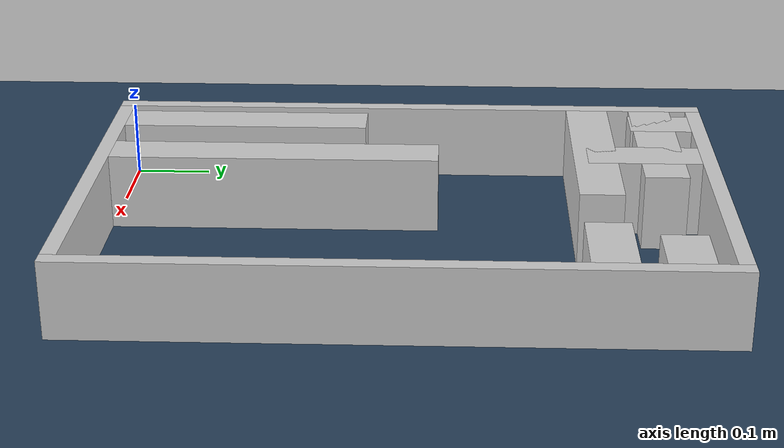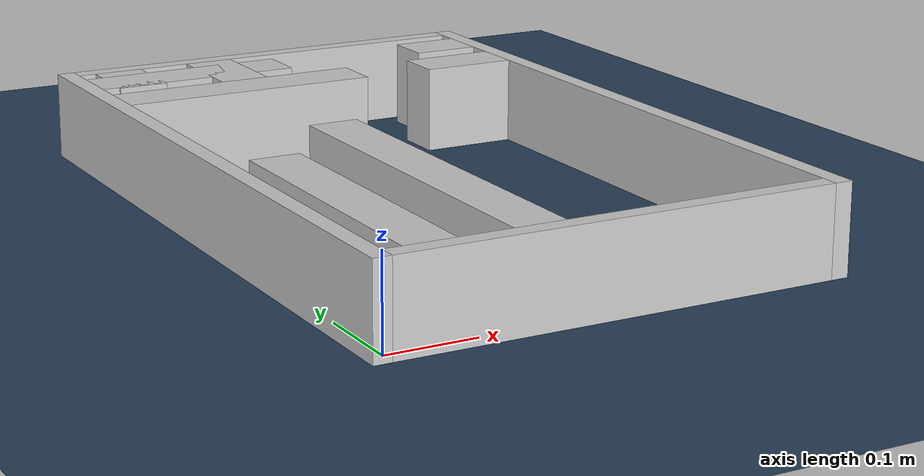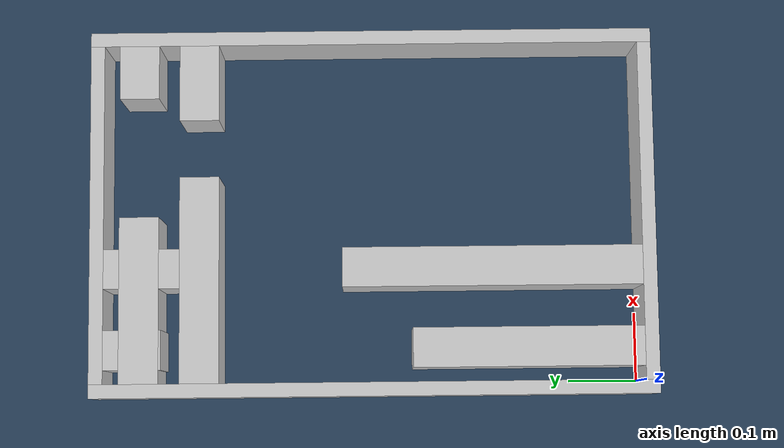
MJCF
<?xml version="1.0" ?>
<mujoco model="generated_real_template">
  <compiler angle="degree"/>
  <option timestep="0.002" integrator="implicitfast" iterations="100" cone="elliptic"/>
  <default>
    <geom density="1"/>
  </default>
  <asset>
    <texture builtin="gradient" height="3072" rgb1="0.3 0.5 0.7" rgb2="0 0 0" type="skybox" width="512"/>
    <texture builtin="checker" height="300" mark="edge" markrgb="0.8 0.8 0.8" name="groundplane" rgb1="0.2 0.3 0.4" rgb2="0.1 0.2 0.3" type="2d" width="300"/>
    <material name="groundplane" reflectance="0.2" texrepeat="5 5" texture="groundplane" texuniform="true"/>
  </asset>
  <worldbody>
    <light dir="0 0 -1" directional="true" pos="0 0 1.5"/>
    <geom name="floor" type="plane" condim="4" friction="0.5 0.005 0.001" material="groundplane" size="0 0 0.05"/>
    <body name="walls">
      <geom name="wall_boundary_left" type="box" condim="4" friction="1.0 0.005 0.0001" rgba="0.8 0.8 0.8 1" pos="-0.010000 0.387500 0.050000" euler="0 0 0.000000" size="0.010000 0.407500 0.050000"/>
      <geom name="wall_boundary_right" type="box" condim="4" friction="1.0 0.005 0.0001" rgba="0.8 0.8 0.8 1" pos="0.500000 0.387500 0.050000" euler="0 0 0.000000" size="0.010000 0.407500 0.050000"/>
      <geom name="wall_boundary_bottom" type="box" condim="4" friction="1.0 0.005 0.0001" rgba="0.8 0.8 0.8 1" pos="0.245000 -0.010000 0.050000" euler="0 0 0.000000" size="0.245000 0.010000 0.050000"/>
      <geom name="wall_boundary_top" type="box" condim="4" friction="1.0 0.005 0.0001" rgba="0.8 0.8 0.8 1" pos="0.245000 0.785000 0.050000" euler="0 0 0.000000" size="0.245000 0.010000 0.050000"/>
      <geom name="wall_inner_1_1" type="box" condim="4" friction="1.0 0.005 0.0001" rgba="0.8 0.8 0.8 1" pos="0.119587 0.724082 0.050000" euler="0 0 0.000000" size="0.119587 0.028500 0.050000"/>
      <geom name="wall_inner_1_2" type="box" condim="4" friction="1.0 0.005 0.0001" rgba="0.8 0.8 0.8 1" pos="0.451143 0.724082 0.050000" euler="0 0 0.000000" size="0.038857 0.028500 0.050000"/>
      <geom name="wall_inner_2_1" type="box" condim="4" friction="1.0 0.005 0.0001" rgba="0.8 0.8 0.8 1" pos="0.048430 0.165706 0.050000" euler="0 0 90.000000" size="0.165706 0.028500 0.050000"/>
      <geom name="wall_inner_2_2" type="box" condim="4" friction="1.0 0.005 0.0001" rgba="0.8 0.8 0.8 1" pos="0.048430 0.733603 0.050000" euler="0 0 90.000000" size="0.041397 0.028500 0.050000"/>
      <geom name="wall_inner_3_1" type="box" condim="4" friction="1.0 0.005 0.0001" rgba="0.8 0.8 0.8 1" pos="0.148498 0.637220 0.050000" euler="0 0 0.000000" size="0.148498 0.028500 0.050000"/>
      <geom name="wall_inner_3_2" type="box" condim="4" friction="1.0 0.005 0.0001" rgba="0.8 0.8 0.8 1" pos="0.434874 0.637220 0.050000" euler="0 0 0.000000" size="0.055126 0.028500 0.050000"/>
      <geom name="wall_inner_4_1" type="box" condim="4" friction="1.0 0.005 0.0001" rgba="0.8 0.8 0.8 1" pos="0.164470 0.216029 0.050000" euler="0 0 90.000000" size="0.216029 0.028500 0.050000"/>
      <geom name="wall_inner_4_2" type="box" condim="4" friction="1.0 0.005 0.0001" rgba="0.8 0.8 0.8 1" pos="0.164470 0.701056 0.050000" euler="0 0 90.000000" size="0.073944 0.028500 0.050000"/>
    </body>
  </worldbody>
</mujoco>
